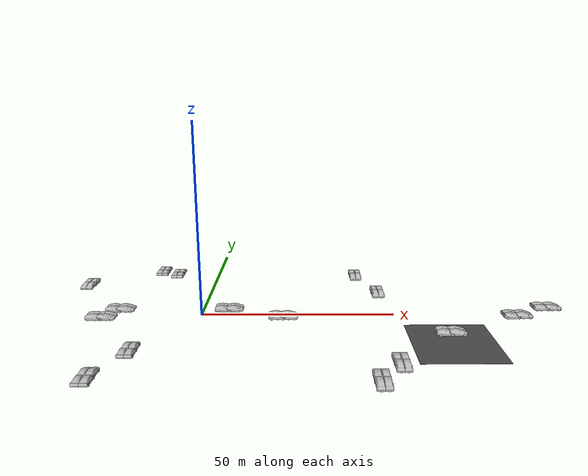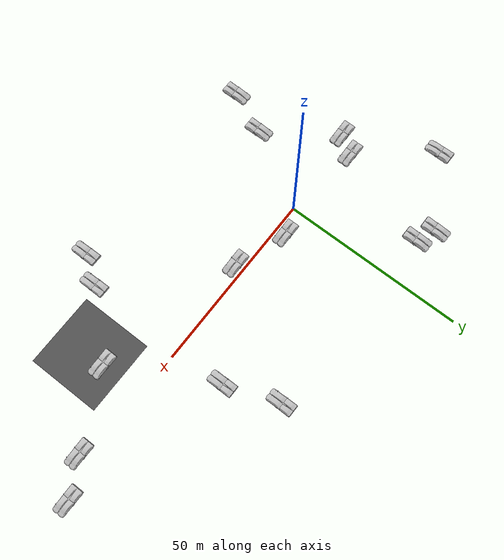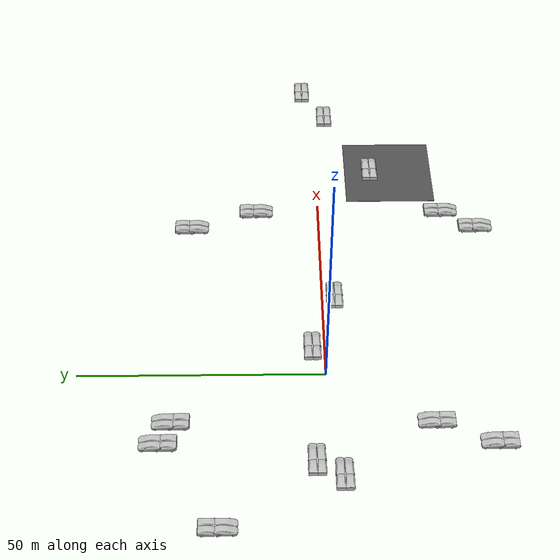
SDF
<sdf version="1.6">
 <world name="default">
  <scene>
   <grid>false</grid>
   <origin_visual>false</origin_visual>
   <ambient>0.85 0.85 0.85 1</ambient>
   <sky><clouds><speed>12</speed></clouds></sky>
   <background>0.35 0.35 0.35 1.0</background>
  </scene>
  <physics name="default_physics" default="0" type="ode">
   <max_step_size>0.001</max_step_size>
   <real_time_factor>1</real_time_factor>
   <real_time_update_rate>1000</real_time_update_rate>
  </physics>
  <light type="directional" name="sun">
   <pose>0 0 1000 0 0 0</pose>
   <diffuse>0.8 0.8 0.8 1</diffuse>
   <specular>0.5 0.5 0.5 1</specular>
   <attenuation>
    <range>1000</range>
    <constant>0.9</constant>
    <linear>0.01</linear>
    <quadratic>0.001</quadratic>
   </attenuation>
   <direction>-0.5 0.1 -0.4</direction>
  </light>
  <model name="upper_camera_satnav">
   <static>true</static>
   <pose>20 0 90 0 1.5708 0</pose>
   <link name="upper_camera_link">
    <sensor name="upper_camera" type="camera">
     <always_on>true</always_on>
     <visualize>true</visualize>
     <update_rate>15</update_rate>
     <camera>
      <horizontal_fov>1.20</horizontal_fov>
      <image><width>720</width><height>1280</height><format>R8G8B8</format></image>
      <clip><near>0.1</near><far>200</far></clip>
     </camera>
     <plugin name="upper_camera_controller" filename="libgazebo_ros_camera.so">
      <frame_name>upper_camera_link</frame_name>
     </plugin>
    </sensor>
   </link>
  </model>
  <model name="ground_plane">
   <static>true</static>
   <link name="link">
    <collision name="collision">
     <geometry><plane><normal>0 0 1</normal><size>100 100</size></plane></geometry>
     <surface><friction><ode><mu>100</mu><mu2>50</mu2></ode></friction></surface>
    </collision>
   </link>
  </model>
  <model name="asphalt_plane_74">
   <static>true</static>
   <pose>61.581
    -16.664
    0
    0
    0
    0</pose>
   <link name="link">
    <visual name="visual">
     <geometry><box><size>20
            20
            0.05</size></box></geometry>
     <material>
      <script>
       <uri>model://asphalt_plane/materials/scripts</uri>
       <uri>model://asphalt_plane/materials/textures</uri>
       <name>vrc/asphalt</name>
      </script>
     </material>
    </visual>
   </link>
  </model>
  <include>
   <name>hatchback_red_75</name>
   <pose>61.9
      -12.36
      0.0
      0
      0
      0</pose>
   <uri>model://prius_parked</uri>
  </include>
  <include>
   <name>pickup_147</name>
   <pose>-36.72
      21.02
      0.0
      0
      0
      -1.57</pose>
   <uri>model://prius_parked</uri>
  </include>
  <include>
   <name>hatchback_blue_241</name>
   <pose>-17.55
      -32.5226077364148
      0.0
      0
      0
      1.5707963267948966</pose>
   <uri>model://prius_parked</uri>
  </include>
  <include>
   <name>pickup_242</name>
   <pose>-12.450000000000001
      -20.895284503516816
      0.0
      0
      0
      1.5707963267948966</pose>
   <uri>model://prius_parked</uri>
  </include>
  <include>
   <name>suv_243</name>
   <pose>42.449999999999996
      -34.740594758017295
      0.0
      0
      0
      -1.5707963267948966</pose>
   <uri>model://prius_parked</uri>
  </include>
  <include>
   <name>pickup_244</name>
   <pose>47.550000000000004
      -27.542267791140933
      0.0
      0
      0
      -1.5707963267948966</pose>
   <uri>model://prius_parked</uri>
  </include>
  <include>
   <name>hatchback_blue_245</name>
   <pose>-17.55
      32.93096512811481
      0.0
      0
      0
      1.5707963267948966</pose>
   <uri>model://prius_parked</uri>
  </include>
  <include>
   <name>pickup_246</name>
   <pose>-12.450000000000001
      30.68746326605413
      0.0
      0
      0
      1.5707963267948966</pose>
   <uri>model://prius_parked</uri>
  </include>
  <include>
   <name>hatchback_247</name>
   <pose>42.449999999999996
      28.0591330819157
      0.0
      0
      0
      -1.5707963267948966</pose>
   <uri>model://prius_parked</uri>
  </include>
  <include>
   <name>pickup_248</name>
   <pose>47.550000000000004
      13.81490462229628
      0.0
      0
      0
      -1.5707963267948966</pose>
   <uri>model://prius_parked</uri>
  </include>
  <include>
   <name>pickup_249</name>
   <pose>-24.995741773170444
      -2.5500000000000003
      0.0
      0
      0
      0</pose>
   <uri>model://prius_parked</uri>
  </include>
  <include>
   <name>hatchback_250</name>
   <pose>-21.605234819116983
      2.5500000000000003
      0.0
      0
      0
      0</pose>
   <uri>model://prius_parked</uri>
  </include>
  <include>
   <name>suv_251</name>
   <pose>21.43928977325851
      -2.5500000000000003
      0.0
      0
      0
      0</pose>
   <uri>model://prius_parked</uri>
  </include>
  <include>
   <name>hatchback_blue_252</name>
   <pose>7.088345356237102
      2.5500000000000003
      0.0
      0
      0
      0</pose>
   <uri>model://prius_parked</uri>
  </include>
  <include>
   <name>pickup_253</name>
   <pose>81.52668900386297
      -2.5500000000000003
      0.0
      0
      0
      0</pose>
   <uri>model://prius_parked</uri>
  </include>
  <include>
   <name>suv_254</name>
   <pose>91.14288982830527
      2.5500000000000003
      0.0
      0
      0
      0</pose>
   <uri>model://prius_parked</uri>
  </include>
  <plugin name="gazebo_occupancy_map" filename="libgazebo_2Dmap_plugin.so">
   <map_resolution>0.05</map_resolution>
   <map_height>0.1</map_height>
   <map_size_x>400.0</map_size_x>
   <map_size_y>140.0</map_size_y>
   <init_robot_x>0.0</init_robot_x>
   <init_robot_y>0.0</init_robot_y>
  </plugin>
 </world>
</sdf>

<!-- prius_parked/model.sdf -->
<sdf version="1.6">
  <model name="prius_parked">
    <static>true</static>
    <pose>0 0 0.03 0 0 0</pose>
    <link name="body">
      <!-- Match the +90 degree internal yaw used by the hatchback models that
           these parked cars replace, so the existing world poses stay valid. -->
      <pose>0 0 0 0 0 1.57079632679</pose>

      <visual name="chassis_visual">
        <geometry>
          <mesh>
            <uri>model://prius_hybrid/meshes/Hybrid.obj</uri>
            <scale>0.01 0.01 0.01</scale>
            <submesh>
              <name>Hybrid</name>
              <center>false</center>
            </submesh>
          </mesh>
        </geometry>
      </visual>

      <visual name="interior_visual">
        <geometry>
          <mesh>
            <uri>model://prius_hybrid/meshes/Hybrid.obj</uri>
            <scale>0.01 0.01 0.01</scale>
            <submesh>
              <name>Hybrid_Interior</name>
              <center>false</center>
            </submesh>
          </mesh>
        </geometry>
      </visual>

      <visual name="windows_visual">
        <geometry>
          <mesh>
            <uri>model://prius_hybrid/meshes/Hybrid.obj</uri>
            <scale>0.01 0.01 0.01</scale>
            <submesh>
              <name>Hybrid_Windows</name>
              <center>false</center>
            </submesh>
          </mesh>
        </geometry>
      </visual>

      <visual name="front_left_wheel_visual">
        <pose>0.80 -1.41 0.3 0 0 0</pose>
        <geometry>
          <mesh>
            <uri>model://prius_hybrid/meshes/Hybrid.obj</uri>
            <scale>0.01 0.01 0.01</scale>
            <submesh>
              <name>Wheel_Front_Left_</name>
              <center>true</center>
            </submesh>
          </mesh>
        </geometry>
      </visual>

      <visual name="front_right_wheel_visual">
        <pose>-0.76 -1.41 0.3 0 0 0</pose>
        <geometry>
          <mesh>
            <uri>model://prius_hybrid/meshes/Hybrid.obj</uri>
            <scale>0.01 0.01 0.01</scale>
            <submesh>
              <name>Wheel_Front_Right</name>
              <center>true</center>
            </submesh>
          </mesh>
        </geometry>
      </visual>

      <visual name="rear_left_wheel_visual">
        <pose>0.826 1.45 0.3 0 0 0</pose>
        <geometry>
          <mesh>
            <uri>model://prius_hybrid/meshes/Hybrid.obj</uri>
            <scale>0.01 0.01 0.01</scale>
            <submesh>
              <name>Wheel_Front_Left_</name>
              <center>true</center>
            </submesh>
          </mesh>
        </geometry>
      </visual>

      <visual name="rear_right_wheel_visual">
        <pose>-0.826 1.45 0.3 0 0 0</pose>
        <geometry>
          <mesh>
            <uri>model://prius_hybrid/meshes/Hybrid.obj</uri>
            <scale>0.01 0.01 0.01</scale>
            <submesh>
              <name>Wheel_Front_Right</name>
              <center>true</center>
            </submesh>
          </mesh>
        </geometry>
      </visual>

      <collision name="chassis">
        <pose>0 0.05 0.625 0 0 0</pose>
        <geometry>
          <box>
            <size>1.7526 2.1 0.95</size>
          </box>
        </geometry>
      </collision>

      <collision name="front_bumper">
        <pose>0 -2.0 0.458488 0 0 0</pose>
        <geometry>
          <box>
            <size>1.337282 0.48 0.566691</size>
          </box>
        </geometry>
      </collision>

      <collision name="hood">
        <pose>0 -1.900842 0.676305 0.341247 0 0</pose>
        <geometry>
          <box>
            <size>1.597968 0.493107 0.265468</size>
          </box>
        </geometry>
      </collision>

      <collision name="windshield">
        <pose>0 -0.875105 1.032268 0.335476 0 0</pose>
        <geometry>
          <box>
            <size>1.168381 1.654253 0.272347</size>
          </box>
        </geometry>
      </collision>

      <collision name="top_front">
        <pose>0 0.161236 1.386042 0.135030 0 0</pose>
        <geometry>
          <box>
            <size>1.279154 0.625988 0.171868</size>
          </box>
        </geometry>
      </collision>

      <collision name="top_rear">
        <pose>0 0.817696 1.360069 -0.068997 0 0</pose>
        <geometry>
          <box>
            <size>1.285130 0.771189 0.226557</size>
          </box>
        </geometry>
      </collision>

      <collision name="rear_window">
        <pose>0 1.640531 1.175126 -0.262017 0 0</pose>
        <geometry>
          <box>
            <size>1.267845 1.116344 0.244286</size>
          </box>
        </geometry>
      </collision>

      <collision name="trunk">
        <pose>0 1.637059 0.888180 0 0 0</pose>
        <geometry>
          <box>
            <size>1.788064 1.138988 0.482746</size>
          </box>
        </geometry>
      </collision>

      <collision name="back_bumper">
        <pose>0 2.054454 0.577870 0 0 0</pose>
        <geometry>
          <box>
            <size>1.781650 0.512093 0.581427</size>
          </box>
        </geometry>
      </collision>
    </link>
  </model>
</sdf>
